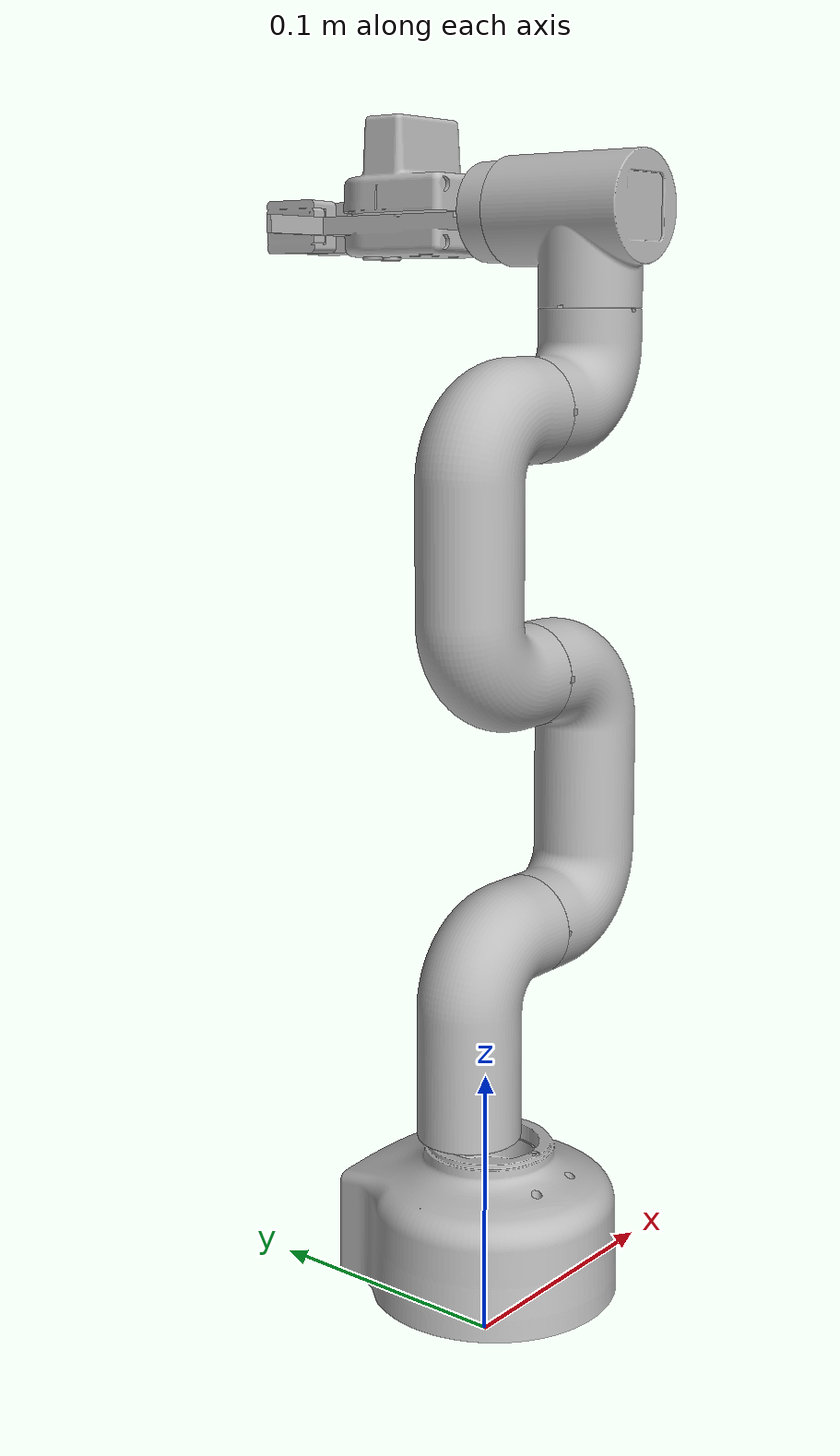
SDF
<?xml version='1.0' encoding='utf-8'?>
<sdf version="1.7">
    <model name="joints">
        <link name="shoulder">
            <pose>2.6169476756177256e-17 0.03212256979860132 0.05193842563748254 1.5707963267948968 -1.1102230246251567e-15 -1.9721522630525295e-31</pose>
            <inertial>
                <mass>0.8922359463469776</mass>
                <pose>0.006107302967923395 0.06982017079058637 0.024530497696917654 0.0 0.0 0.0</pose>
                <inertia>
                    <ixx>0.0006369288959821218</ixx>
                    <iyy>0.00024207776340790955</iyy>
                    <izz>0.0007140130108310473</izz>
                    <ixy>-0.00014307807775486953</ixy>
                    <iyz>-1.8278217844192117e-13</iyz>
                    <ixz>2.186477296443956e-13</ixz>
                </inertia>
            </inertial>
            <visual name="shoulder_visual">
                <geometry>
                    <mesh>
                        <uri>model://joints/meshes/shoulder.stl</uri>
                        <scale>0.001 0.001 0.001</scale>
                    </mesh>
                </geometry>
            </visual>
            <collision name="shoulder_collision">
                <geometry>
                    <mesh>
                        <uri>model://joints/meshes/shoulder.stl</uri>
                        <scale>0.001 0.001 0.001</scale>
                    </mesh>
                </geometry>
            </collision>
        </link>
        <link name="elbow1">
            <pose>0.0999999999999995 0.032122569798601217 0.3319384256374826 1.5707963267948966 1.1102230246251567e-15 -3.141592653589793</pose>
            <inertial>
                <mass>1.3454663782767042</mass>
                <pose>0.03594262120968438 -0.13605042786725918 -0.02453049773205564 0.0 0.0 0.0</pose>
                <inertia>
                    <ixx>0.0020138689072998605</ixx>
                    <iyy>0.000380563987445094</iyy>
                    <izz>0.002145662079070922</izz>
                    <ixy>-1.9530435509896662e-12</ixy>
                    <iyz>-3.380131652814983e-16</iyz>
                    <ixz>5.271200143042177e-13</ixz>
                </inertia>
            </inertial>
            <visual name="elbow1_visual">
                <geometry>
                    <mesh>
                        <uri>model://joints/meshes/elbow1.stl</uri>
                        <scale>0.001 0.001 0.001</scale>
                    </mesh>
                </geometry>
            </visual>
            <collision name="elbow1_collision">
                <geometry>
                    <mesh>
                        <uri>model://joints/meshes/elbow1.stl</uri>
                        <scale>0.001 0.001 0.001</scale>
                    </mesh>
                </geometry>
            </collision>
        </link>
        <link name="elbow2">
            <pose>0.04999999999999956 0.032122569798601217 0.5319384256374826 1.5707963267948968 -1.1102230246251567e-15 7.446012809753136e-31</pose>
            <inertial>
                <mass>1.3454663782767038</mass>
                <pose>-0.041927378790315585 -0.23987709453392594 0.02453049770402822 0.0 0.0 0.0</pose>
                <inertia>
                    <ixx>0.0020138689072998067</ixx>
                    <iyy>0.0003805639874451018</iyy>
                    <izz>0.002145662079070826</izz>
                    <ixy>-1.9530398050803476e-12</ixy>
                    <iyz>-3.383128281766478e-16</iyz>
                    <ixz>5.271203260123415e-13</ixz>
                </inertia>
            </inertial>
            <visual name="elbow2_visual">
                <geometry>
                    <mesh>
                        <uri>model://joints/meshes/elbow2.stl</uri>
                        <scale>0.001 0.001 0.001</scale>
                    </mesh>
                </geometry>
            </visual>
            <collision name="elbow2_collision">
                <geometry>
                    <mesh>
                        <uri>model://joints/meshes/elbow2.stl</uri>
                        <scale>0.001 0.001 0.001</scale>
                    </mesh>
                </geometry>
            </collision>
        </link>
        <link name="wrist">
            <pose>0.08999999999999907 0.03212256979860115 0.7069384256374833 -1.5707963267948968 4.912736883966311e-15 3.141592653589793</pose>
            <inertial>
                <mass>0.5621294250304879</mass>
                <pose>0.027530978335849655 0.3571294495835925 0.024530497684512605 0.0 0.0 0.0</pose>
                <inertia>
                    <ixx>0.0001612412753430464</ixx>
                    <iyy>0.00016124127534288533</iyy>
                    <izz>0.00021861826201180468</izz>
                    <ixy>-5.363324269641422e-05</ixy>
                    <iyz>-1.5165078544186918e-13</iyz>
                    <ixz>1.5166848789893818e-13</ixz>
                </inertia>
            </inertial>
            <visual name="wrist_visual">
                <geometry>
                    <mesh>
                        <uri>model://joints/meshes/wrist.stl</uri>
                        <scale>0.001 0.001 0.001</scale>
                    </mesh>
                </geometry>
            </visual>
            <collision name="wrist_collision">
                <geometry>
                    <mesh>
                        <uri>model://joints/meshes/wrist.stl</uri>
                        <scale>0.001 0.001 0.001</scale>
                    </mesh>
                </geometry>
            </collision>
        </link>
        <link name="endeff">
            <pose>0.14999999999999195 0.13212256979860157 0.7819384256374835 3.141592653589787 -9.790680876116187e-14 -1.5265566588598185e-16</pose>
            <inertial>
                <mass>0.8677896590109766</mass>
                <pose>-0.07786999498841096 0.11588371775911781 0.37476166840797953 0.0 0.0 0.0</pose>
                <inertia>
                    <ixx>0.00048065004289465105</ixx>
                    <iyy>0.00026170508204054123</iyy>
                    <izz>0.00039769409462339503</izz>
                    <ixy>2.3478219280241108e-09</ixy>
                    <iyz>-3.828933087831671e-05</iyz>
                    <ixz>7.657905200041939e-09</ixz>
                </inertia>
            </inertial>
            <visual name="endeff_visual">
                <geometry>
                    <mesh>
                        <uri>model://joints/meshes/endeff.stl</uri>
                        <scale>0.001 0.001 0.001</scale>
                    </mesh>
                </geometry>
            </visual>
            <collision name="endeff_collision">
                <geometry>
                    <mesh>
                        <uri>model://joints/meshes/endeff.stl</uri>
                        <scale>0.001 0.001 0.001</scale>
                    </mesh>
                </geometry>
            </collision>
        </link>
        <link name="base_link">
            <pose>0.0 0.0 0.0 0.0 -0.0 0.0</pose>
            <inertial>
                <mass>2.3872115565648064</mass>
                <pose>3.741321866578049e-05 0.0056539776449437305 0.034729694334675335 0.0 0.0 0.0</pose>
                <inertia>
                    <ixx>0.0018634609500875663</ixx>
                    <iyy>0.0017434011436581191</iyy>
                    <izz>0.0016067473199086455</izz>
                    <ixy>1.4751109384342197e-06</ixy>
                    <iyz>-9.467336822800319e-06</iyz>
                    <ixz>1.2099441727078222e-06</ixz>
                </inertia>
            </inertial>
            <visual name="base_link_visual">
                <geometry>
                    <mesh>
                        <uri>model://joints/meshes/base_link.stl</uri>
                        <scale>0.001 0.001 0.001</scale>
                    </mesh>
                </geometry>
            </visual>
            <collision name="base_link_collision">
                <geometry>
                    <mesh>
                        <uri>model://joints/meshes/base_link.stl</uri>
                        <scale>0.001 0.001 0.001</scale>
                    </mesh>
                </geometry>
            </collision>
        </link>
        <link name="Component46-v1">
            <pose>-0.006369915389960821 -0.06192560028352894 0.1564775879476227 7.487161718071197e-15 9.774629160066703e-14 -3.119186265305868</pose>
            <inertial>
                <mass>0.0526959945950827</mass>
                <pose>-0.09279753099437432 -0.20284438659862555 0.25212171777922626 0.0 0.0 0.0</pose>
                <inertia>
                    <ixx>4.693091406404705e-06</ixx>
                    <iyy>2.551126480364682e-06</iyy>
                    <izz>3.680404468285301e-06</izz>
                    <ixy>4.352333646128184e-09</ixy>
                    <iyz>7.244450892489595e-11</iyz>
                    <ixz>9.09739618955739e-09</ixz>
                </inertia>
            </inertial>
            <visual name="Component46-v1_visual">
                <geometry>
                    <mesh>
                        <uri>model://joints/meshes/Component46-v1.stl</uri>
                        <scale>0.001 0.001 0.001</scale>
                    </mesh>
                </geometry>
            </visual>
            <collision name="Component46-v1_collision">
                <geometry>
                    <mesh>
                        <uri>model://joints/meshes/Component46-v1.stl</uri>
                        <scale>0.001 0.001 0.001</scale>
                    </mesh>
                </geometry>
            </collision>
        </link>
        <link name="Component47-v1">
            <pose>0.0177371772401821 -0.0585754949334922 0.15647758794762462 4.275346736850202e-15 9.802718006162554e-14 3.119189637929617</pose>
            <inertial>
                <mass>0.05314846759141695</mass>
                <pose>-0.04015129705556641 -0.2024722925599843 0.25216912717664075 0.0 0.0 0.0</pose>
                <inertia>
                    <ixx>4.722405651580886e-06</ixx>
                    <iyy>2.5686962231235156e-06</iyy>
                    <izz>3.6994040288314606e-06</izz>
                    <ixy>-4.399956275090766e-09</ixy>
                    <iyz>4.3483368758076264e-11</iyz>
                    <ixz>-5.139654567875315e-09</ixz>
                </inertia>
            </inertial>
            <visual name="Component47-v1_visual">
                <geometry>
                    <mesh>
                        <uri>model://joints/meshes/Component47-v1.stl</uri>
                        <scale>0.001 0.001 0.001</scale>
                    </mesh>
                </geometry>
            </visual>
            <collision name="Component47-v1_collision">
                <geometry>
                    <mesh>
                        <uri>model://joints/meshes/Component47-v1.stl</uri>
                        <scale>0.001 0.001 0.001</scale>
                    </mesh>
                </geometry>
            </collision>
        </link>
        <link name="Component49-v1">
            <pose>0.005054838752075113 -0.060358553772483836 0.14797758794762375 6.470194646216449e-15 9.778434408124715e-14 3.141592653589793</pose>
            <inertial>
                <mass>0.7709988590705452</mass>
                <pose>-0.06594447258112864 -0.14698301708561615 0.2673422057526543 0.0 0.0 0.0</pose>
                <inertia>
                    <ixx>0.00033165400163917926</ixx>
                    <iyy>0.00028393168501467103</iyy>
                    <izz>0.0003776081955500167</izz>
                    <ixy>-3.027456343860872e-07</ixy>
                    <iyz>-5.088297655174554e-06</iyz>
                    <ixz>-1.9021060532487307e-05</ixz>
                </inertia>
            </inertial>
            <visual name="Component49-v1_visual">
                <geometry>
                    <mesh>
                        <uri>model://joints/meshes/Component49-v1.stl</uri>
                        <scale>0.001 0.001 0.001</scale>
                    </mesh>
                </geometry>
            </visual>
            <collision name="Component49-v1_collision">
                <geometry>
                    <mesh>
                        <uri>model://joints/meshes/Component49-v1.stl</uri>
                        <scale>0.001 0.001 0.001</scale>
                    </mesh>
                </geometry>
            </collision>
        </link>
        <link name="adapter-v1">
            <pose>0.2005256685268952 0.010876733786437996 0.6858353392153793 3.141592653589787 -9.790680876116188e-14 2.775557561625486e-17</pose>
            <inertial>
                <mass>0.020902045672396473</mass>
                <pose>-0.12839908837610708 -0.04184146412097356 0.2735485681710775 0.0 0.0 0.0</pose>
                <inertia>
                    <ixx>3.013363671764203e-06</ixx>
                    <iyy>5.366568622457419e-06</iyy>
                    <izz>3.016219519577022e-06</izz>
                    <ixy>-2.4007017881129287e-10</ixy>
                    <iyz>1.4896461819207678e-09</iyz>
                    <ixz>6.515444638955721e-13</ixz>
                </inertia>
            </inertial>
            <visual name="adapter-v1_visual">
                <geometry>
                    <mesh>
                        <uri>model://joints/meshes/adapter-v1.stl</uri>
                        <scale>0.001 0.001 0.001</scale>
                    </mesh>
                </geometry>
            </visual>
            <collision name="adapter-v1_collision">
                <geometry>
                    <mesh>
                        <uri>model://joints/meshes/adapter-v1.stl</uri>
                        <scale>0.001 0.001 0.001</scale>
                    </mesh>
                </geometry>
            </collision>
        </link>
        <joint name="base_link_j1" type="revolute">
            <pose>1.7897373471833492e-19 0.023732574362517467 0.024530569798601312 0.0 0.0 0.0</pose>
            <parent>base_link</parent>
            <child>shoulder</child>
            <axis>
                <xyz expressed_in="__model__">0.0 -0.0 1.0</xyz>
            </axis>
        </joint>
        <joint name="shoulder_j2" type="revolute">
            <pose>0.0639349999999998 -0.18413742563748253 -0.024530569798601264 0.0 0.0 0.0</pose>
            <parent>shoulder</parent>
            <child>elbow1</child>
            <axis>
                <xyz expressed_in="__model__">1.0 -0.0 0.0</xyz>
            </axis>
        </joint>
        <joint name="elbow1_j3" type="revolute">
            <pose>-0.013934999999999878 -0.2879634256374826 0.024530569798601277 0.0 0.0 0.0</pose>
            <parent>elbow1</parent>
            <child>elbow2</child>
            <axis>
                <xyz expressed_in="__model__">-1.0 -0.0 0.0</xyz>
            </axis>
        </joint>
        <joint name="elbow2_j4" type="revolute">
            <pose>0.053935000000000954 0.36679042563748326 0.024530569798601215 0.0 0.0 0.0</pose>
            <parent>elbow2</parent>
            <child>wrist</child>
            <axis>
                <xyz expressed_in="__model__">1.0 0.0 0.0</xyz>
            </axis>
        </joint>
        <joint name="wrist_j5" type="revolute">
            <pose>-0.077870000000031 0.12453056979859865 0.40572542563747604 0.0 0.0 0.0</pose>
            <parent>wrist</parent>
            <child>endeff</child>
            <axis>
                <xyz expressed_in="__model__">-0.0 0.0 1.0</xyz>
            </axis>
        </joint>
        <joint name="endeff_j6" type="revolute">
            <pose>-0.12839566852692197 -0.04360026621356376 0.2735573392153665 0.0 0.0 0.0</pose>
            <parent>endeff</parent>
            <child>adapter-v1</child>
            <axis>
                <xyz expressed_in="__model__">0.0 1.0 -0.0</xyz>
            </axis>
        </joint>
        <joint name="adapter-v1_Rigid-16" type="fixed">
            <pose>-0.06707516124795071 -0.11683555377248214 0.26430041205237037 0.0 0.0 0.0</pose>
            <parent>adapter-v1</parent>
            <child>Component49-v1</child>
        </joint>
        <joint name="Component49-v1_Slider-17" type="prismatic">
            <pose>-0.08277861990113215 -0.19004768994505275 0.25225041205237064 0.0 0.0 0.0</pose>
            <parent>Component49-v1</parent>
            <child>Component46-v1</child>
            <axis>
                <xyz expressed_in="__model__">-1.0 0.0 -0.0</xyz>
                <limit>
                    <lower>-0.03</lower>
                    <upper>0.0</upper>
                </limit>
            </axis>
        </joint>
        <joint name="Component49-v1_Slider-18" type="prismatic">
            <pose>-0.05015645768024866 -0.18967565350060994 0.25225041205237125 0.0 0.0 0.0</pose>
            <parent>Component49-v1</parent>
            <child>Component47-v1</child>
            <axis>
                <xyz expressed_in="__model__">-1.0 0.0 -0.0</xyz>
                <limit>
                    <lower>0.0</lower>
                    <upper>0.03</upper>
                </limit>
            </axis>
        </joint>
    </model>
</sdf>
